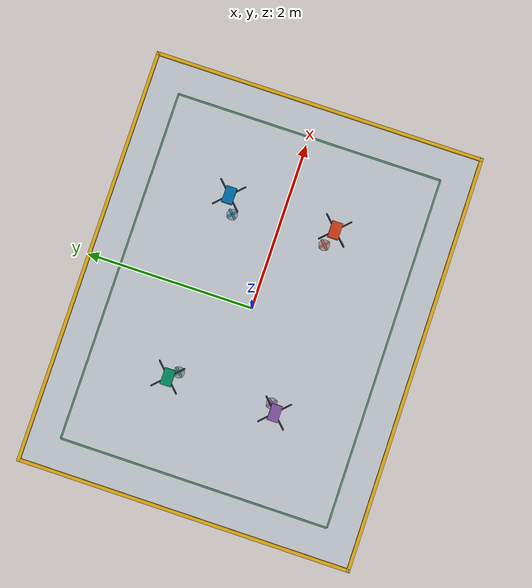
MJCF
<mujoco model="four_uav_preflight">
  <compiler angle="radian" coordinate="local"/>
  <option timestep="0.005" gravity="0 0 -9.81" integrator="RK4"/>
  <size nconmax="100" njmax="500"/>

  <visual>
    <global azimuth="135" elevation="-55" offwidth="960" offheight="720"/>
    <quality shadowsize="2048"/>
    <map znear="0.01" zfar="50"/>
  </visual>

  <asset>
    <texture name="floor_tex" type="2d" builtin="checker" rgb1="0.88 0.90 0.92" rgb2="0.72 0.76 0.80" width="512" height="512"/>
    <material name="floor_mat" texture="floor_tex" texrepeat="5 4" reflectance="0.05"/>
    <material name="boundary_mat" rgba="0.92 0.70 0.08 1"/>
    <material name="geofence_mat" rgba="0.12 0.48 0.22 0.62"/>
    <material name="uav1_mat" rgba="0.84 0.25 0.08 1"/>
    <material name="uav2_mat" rgba="0.00 0.45 0.70 1"/>
    <material name="uav3_mat" rgba="0.00 0.58 0.40 1"/>
    <material name="uav4_mat" rgba="0.52 0.34 0.66 1"/>
    <material name="arm_mat" rgba="0.18 0.20 0.22 1"/>
    <material name="start_mat" rgba="0.18 0.20 0.22 0.30"/>
    <material name="goal1_mat" rgba="0.84 0.25 0.08 0.72"/>
    <material name="goal2_mat" rgba="0.00 0.45 0.70 0.72"/>
    <material name="goal3_mat" rgba="0.00 0.58 0.40 0.72"/>
    <material name="goal4_mat" rgba="0.52 0.34 0.66 0.72"/>
  </asset>

  <worldbody>
    <light name="key" pos="0 0 7" dir="0 0 -1" diffuse="0.85 0.85 0.85" castshadow="true"/>
    <geom name="floor" type="plane" size="2.5 2 0.1" material="floor_mat" friction="0.8 0.02 0.01"/>
    <geom name="boundary_x_pos" type="box" pos="2.48 0 0.012" size="0.02 2 0.012" material="boundary_mat" contype="0" conaffinity="0"/>
    <geom name="boundary_x_neg" type="box" pos="-2.48 0 0.012" size="0.02 2 0.012" material="boundary_mat" contype="0" conaffinity="0"/>
    <geom name="boundary_y_pos" type="box" pos="0 1.98 0.012" size="2.5 0.02 0.012" material="boundary_mat" contype="0" conaffinity="0"/>
    <geom name="boundary_y_neg" type="box" pos="0 -1.98 0.012" size="2.5 0.02 0.012" material="boundary_mat" contype="0" conaffinity="0"/>
    <geom name="geofence_x_pos" type="box" pos="2.10 0 0.018" size="0.009 1.60 0.006" material="geofence_mat" contype="0" conaffinity="0"/>
    <geom name="geofence_x_neg" type="box" pos="-2.10 0 0.018" size="0.009 1.60 0.006" material="geofence_mat" contype="0" conaffinity="0"/>
    <geom name="geofence_y_pos" type="box" pos="0 1.60 0.018" size="2.10 0.009 0.006" material="geofence_mat" contype="0" conaffinity="0"/>
    <geom name="geofence_y_neg" type="box" pos="0 -1.60 0.018" size="2.10 0.009 0.006" material="geofence_mat" contype="0" conaffinity="0"/>
    <geom name="start1" type="cylinder" pos="0.96 -0.56 0.014" size="0.065 0.006" material="start_mat" contype="0" conaffinity="0"/>
    <geom name="start2" type="cylinder" pos="0.96 0.56 0.014" size="0.065 0.006" material="start_mat" contype="0" conaffinity="0"/>
    <geom name="start3" type="cylinder" pos="-0.96 0.56 0.014" size="0.065 0.006" material="start_mat" contype="0" conaffinity="0"/>
    <geom name="start4" type="cylinder" pos="-0.96 -0.56 0.014" size="0.065 0.006" material="start_mat" contype="0" conaffinity="0"/>
    <camera name="top" pos="0 0 6.6" xyaxes="1 0 0 0 1 0" fovy="48"/>
    <camera name="perspective" pos="4.2 -5.0 3.8" xyaxes="0.77 0.64 0 -0.29 0.35 0.89" fovy="50"/>

    <body name="uav1" pos="0.96 -0.56 1.2">
      <joint name="uav1_x" type="slide" axis="1 0 0" damping="0.004"/>
      <joint name="uav1_y" type="slide" axis="0 1 0" damping="0.004"/>
      <joint name="uav1_z" type="slide" axis="0 0 1" damping="0.006"/>
      <geom type="box" size="0.085 0.055 0.025" mass="0.032" material="uav1_mat" contype="0" conaffinity="0"/>
      <geom type="capsule" fromto="-0.13 -0.13 0 0.13 0.13 0" size="0.008" mass="0.001" material="arm_mat" contype="0" conaffinity="0"/>
      <geom type="capsule" fromto="-0.13 0.13 0 0.13 -0.13 0" size="0.008" mass="0.001" material="arm_mat" contype="0" conaffinity="0"/>
    </body>
    <body name="uav2" pos="0.96 0.56 1.2">
      <joint name="uav2_x" type="slide" axis="1 0 0" damping="0.004"/>
      <joint name="uav2_y" type="slide" axis="0 1 0" damping="0.004"/>
      <joint name="uav2_z" type="slide" axis="0 0 1" damping="0.006"/>
      <geom type="box" size="0.085 0.055 0.025" mass="0.032" material="uav2_mat" contype="0" conaffinity="0"/>
      <geom type="capsule" fromto="-0.13 -0.13 0 0.13 0.13 0" size="0.008" mass="0.001" material="arm_mat" contype="0" conaffinity="0"/>
      <geom type="capsule" fromto="-0.13 0.13 0 0.13 -0.13 0" size="0.008" mass="0.001" material="arm_mat" contype="0" conaffinity="0"/>
    </body>
    <body name="uav3" pos="-0.96 0.56 1.2">
      <joint name="uav3_x" type="slide" axis="1 0 0" damping="0.004"/>
      <joint name="uav3_y" type="slide" axis="0 1 0" damping="0.004"/>
      <joint name="uav3_z" type="slide" axis="0 0 1" damping="0.006"/>
      <geom type="box" size="0.085 0.055 0.025" mass="0.032" material="uav3_mat" contype="0" conaffinity="0"/>
      <geom type="capsule" fromto="-0.13 -0.13 0 0.13 0.13 0" size="0.008" mass="0.001" material="arm_mat" contype="0" conaffinity="0"/>
      <geom type="capsule" fromto="-0.13 0.13 0 0.13 -0.13 0" size="0.008" mass="0.001" material="arm_mat" contype="0" conaffinity="0"/>
    </body>
    <body name="uav4" pos="-0.96 -0.56 1.2">
      <joint name="uav4_x" type="slide" axis="1 0 0" damping="0.004"/>
      <joint name="uav4_y" type="slide" axis="0 1 0" damping="0.004"/>
      <joint name="uav4_z" type="slide" axis="0 0 1" damping="0.006"/>
      <geom type="box" size="0.085 0.055 0.025" mass="0.032" material="uav4_mat" contype="0" conaffinity="0"/>
      <geom type="capsule" fromto="-0.13 -0.13 0 0.13 0.13 0" size="0.008" mass="0.001" material="arm_mat" contype="0" conaffinity="0"/>
      <geom type="capsule" fromto="-0.13 0.13 0 0.13 -0.13 0" size="0.008" mass="0.001" material="arm_mat" contype="0" conaffinity="0"/>
    </body>

    <body name="goal1" mocap="true" pos="0.96 -0.56 0.025">
      <geom type="box" size="0.070 0.012 0.006" euler="0 0 0.785398" material="goal1_mat" contype="0" conaffinity="0"/>
      <geom type="box" size="0.070 0.012 0.006" euler="0 0 -0.785398" material="goal1_mat" contype="0" conaffinity="0"/>
    </body>
    <body name="goal2" mocap="true" pos="0.96 0.56 0.025">
      <geom type="box" size="0.070 0.012 0.006" euler="0 0 0.785398" material="goal2_mat" contype="0" conaffinity="0"/>
      <geom type="box" size="0.070 0.012 0.006" euler="0 0 -0.785398" material="goal2_mat" contype="0" conaffinity="0"/>
    </body>
    <body name="goal3" mocap="true" pos="-0.96 0.56 0.025">
      <geom type="box" size="0.070 0.012 0.006" euler="0 0 0.785398" material="goal3_mat" contype="0" conaffinity="0"/>
      <geom type="box" size="0.070 0.012 0.006" euler="0 0 -0.785398" material="goal3_mat" contype="0" conaffinity="0"/>
    </body>
    <body name="goal4" mocap="true" pos="-0.96 -0.56 0.025">
      <geom type="box" size="0.070 0.012 0.006" euler="0 0 0.785398" material="goal4_mat" contype="0" conaffinity="0"/>
      <geom type="box" size="0.070 0.012 0.006" euler="0 0 -0.785398" material="goal4_mat" contype="0" conaffinity="0"/>
    </body>
  </worldbody>

  <actuator>
    <motor name="uav1_fx" joint="uav1_x" gear="1" ctrllimited="true" ctrlrange="-1.5 1.5"/>
    <motor name="uav1_fy" joint="uav1_y" gear="1" ctrllimited="true" ctrlrange="-1.5 1.5"/>
    <motor name="uav1_fz" joint="uav1_z" gear="1" ctrllimited="true" ctrlrange="-1.5 1.5"/>
    <motor name="uav2_fx" joint="uav2_x" gear="1" ctrllimited="true" ctrlrange="-1.5 1.5"/>
    <motor name="uav2_fy" joint="uav2_y" gear="1" ctrllimited="true" ctrlrange="-1.5 1.5"/>
    <motor name="uav2_fz" joint="uav2_z" gear="1" ctrllimited="true" ctrlrange="-1.5 1.5"/>
    <motor name="uav3_fx" joint="uav3_x" gear="1" ctrllimited="true" ctrlrange="-1.5 1.5"/>
    <motor name="uav3_fy" joint="uav3_y" gear="1" ctrllimited="true" ctrlrange="-1.5 1.5"/>
    <motor name="uav3_fz" joint="uav3_z" gear="1" ctrllimited="true" ctrlrange="-1.5 1.5"/>
    <motor name="uav4_fx" joint="uav4_x" gear="1" ctrllimited="true" ctrlrange="-1.5 1.5"/>
    <motor name="uav4_fy" joint="uav4_y" gear="1" ctrllimited="true" ctrlrange="-1.5 1.5"/>
    <motor name="uav4_fz" joint="uav4_z" gear="1" ctrllimited="true" ctrlrange="-1.5 1.5"/>
  </actuator>
</mujoco>
